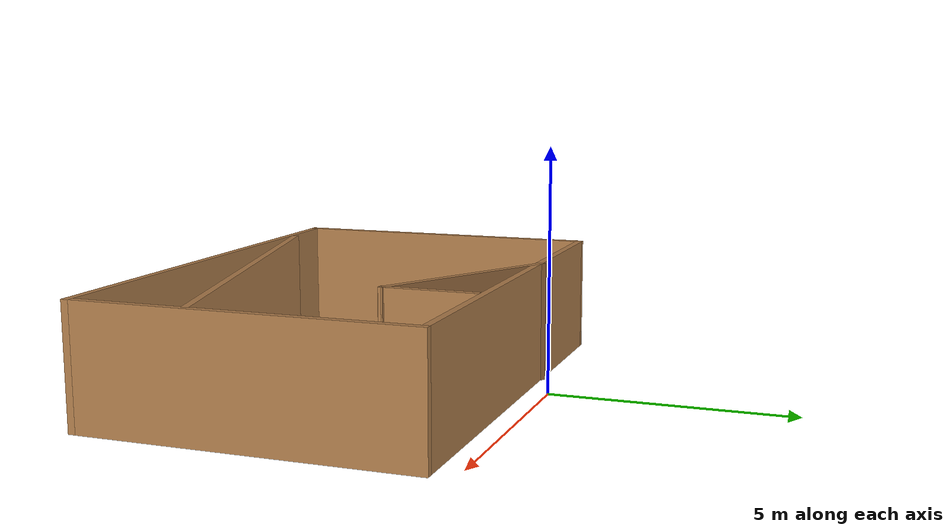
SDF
<?xml version='1.0'?>
<sdf version='1.7'>
  <model name='Room5'>
    <pose>0.529194 -3.7225 0 0 -0 0</pose>
    <link name='Wall_11'>
      <collision name='Wall_11_Collision'>
        <geometry>
          <box>
            <size>2 0.15 2.5</size>
          </box>
        </geometry>
        <pose>0 0 1.25 0 -0 0</pose>
      </collision>
      <visual name='Wall_11_Visual'>
        <pose>0 0 1.25 0 -0 0</pose>
        <geometry>
          <box>
            <size>2 0.15 2.5</size>
          </box>
        </geometry>
        <material>
          <script>
            <uri>file://media/materials/scripts/gazebo.material</uri>
            <name>Gazebo/Wood</name>
          </script>
          <ambient>1 1 1 1</ambient>
        </material>
        <meta>
          <layer>0</layer>
        </meta>
      </visual>
      <pose>1.96311 2.11609 0 0 -0 -1.5708</pose>
    </link>
    <link name='Wall_12'>
      <collision name='Wall_12_Collision'>
        <geometry>
          <box>
            <size>4.25 0.15 2.5</size>
          </box>
        </geometry>
        <pose>0 0 1.25 0 -0 0</pose>
      </collision>
      <visual name='Wall_12_Visual'>
        <pose>0 0 1.25 0 -0 0</pose>
        <geometry>
          <box>
            <size>4.25 0.15 2.5</size>
          </box>
        </geometry>
        <material>
          <script>
            <uri>file://media/materials/scripts/gazebo.material</uri>
            <name>Gazebo/Wood</name>
          </script>
          <ambient>1 1 1 1</ambient>
        </material>
        <meta>
          <layer>0</layer>
        </meta>
      </visual>
      <pose>0.187757 2.21609 0 0 -0 2.61799</pose>
    </link>
    <link name='Wall_2'>
      <collision name='Wall_2_Collision'>
        <geometry>
          <box>
            <size>10 0.15 2.5</size>
          </box>
        </geometry>
        <pose>0 0 1.25 0 -0 0</pose>
      </collision>
      <visual name='Wall_2_Visual'>
        <pose>0 0 1.25 0 -0 0</pose>
        <geometry>
          <box>
            <size>10 0.15 2.5</size>
          </box>
        </geometry>
        <material>
          <script>
            <uri>file://media/materials/scripts/gazebo.material</uri>
            <name>Gazebo/Wood</name>
          </script>
          <ambient>1 1 1 1</ambient>
        </material>
        <meta>
          <layer>0</layer>
        </meta>
      </visual>
      <pose>0 3.2025 0 0 -0 0</pose>
    </link>
    <link name='Wall_5'>
      <collision name='Wall_5_Collision'>
        <geometry>
          <box>
            <size>7 0.15 2.5</size>
          </box>
        </geometry>
        <pose>0 0 1.25 0 -0 0</pose>
      </collision>
      <visual name='Wall_5_Visual'>
        <pose>0 0 1.25 0 -0 0</pose>
        <geometry>
          <box>
            <size>7 0.15 2.5</size>
          </box>
        </geometry>
        <material>
          <script>
            <uri>file://media/materials/scripts/gazebo.material</uri>
            <name>Gazebo/Wood</name>
          </script>
          <ambient>1 1 1 1</ambient>
        </material>
        <meta>
          <layer>0</layer>
        </meta>
      </visual>
      <pose>4.925 -0.222499 0 0 -0 -1.5708</pose>
    </link>
    <link name='Wall_6'>
      <collision name='Wall_6_Collision'>
        <geometry>
          <box>
            <size>10 0.15 2.5</size>
          </box>
        </geometry>
        <pose>0 0 1.25 0 -0 0</pose>
      </collision>
      <visual name='Wall_6_Visual'>
        <pose>0 0 1.25 0 -0 0</pose>
        <geometry>
          <box>
            <size>10 0.15 2.5</size>
          </box>
        </geometry>
        <material>
          <script>
            <uri>file://media/materials/scripts/gazebo.material</uri>
            <name>Gazebo/Wood</name>
          </script>
          <ambient>1 1 1 1</ambient>
        </material>
        <meta>
          <layer>0</layer>
        </meta>
      </visual>
      <pose>0 -3.6475 0 0 -0 3.14159</pose>
    </link>
    <link name='Wall_7'>
      <collision name='Wall_7_Collision'>
        <geometry>
          <box>
            <size>7 0.15 2.5</size>
          </box>
        </geometry>
        <pose>0 0 1.25 0 -0 0</pose>
      </collision>
      <visual name='Wall_7_Visual'>
        <pose>0 0 1.25 0 -0 0</pose>
        <geometry>
          <box>
            <size>7 0.15 2.5</size>
          </box>
        </geometry>
        <material>
          <script>
            <uri>file://media/materials/scripts/gazebo.material</uri>
            <name>Gazebo/Wood</name>
          </script>
          <ambient>1 1 1 1</ambient>
        </material>
        <meta>
          <layer>0</layer>
        </meta>
      </visual>
      <pose>-4.925 -0.222499 0 0 -0 1.5708</pose>
    </link>
    <link name='Wall_9'>
      <collision name='Wall_9_Collision'>
        <geometry>
          <box>
            <size>8.75 0.15 2.5</size>
          </box>
        </geometry>
        <pose>0 0 1.25 0 -0 0</pose>
      </collision>
      <visual name='Wall_9_Visual'>
        <pose>0 0 1.25 0 -0 0</pose>
        <geometry>
          <box>
            <size>8.75 0.15 2.5</size>
          </box>
        </geometry>
        <material>
          <script>
            <uri>file://media/materials/scripts/gazebo.material</uri>
            <name>Gazebo/Wood</name>
          </script>
          <ambient>1 1 1 1</ambient>
        </material>
        <meta>
          <layer>0</layer>
        </meta>
      </visual>
      <pose>0.655849 -2.38106 0 0 -0 -2.87979</pose>
    </link>
    <static>1</static>
  </model>
</sdf>
